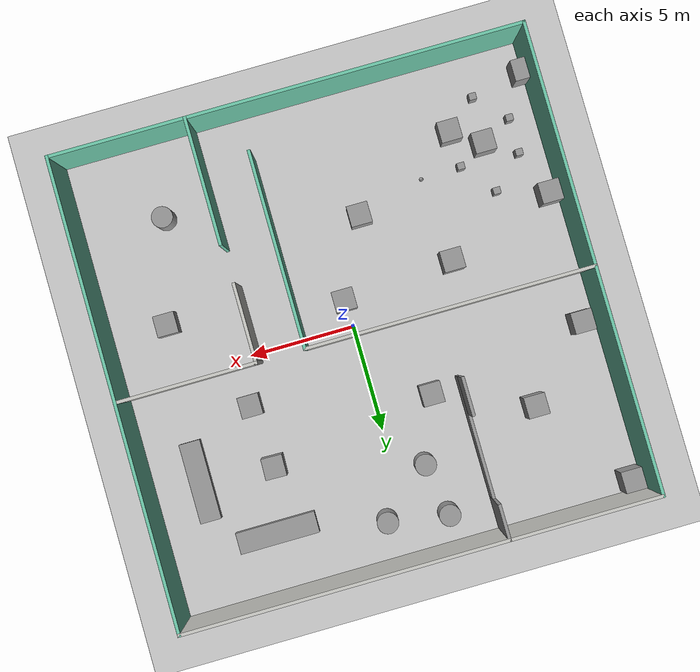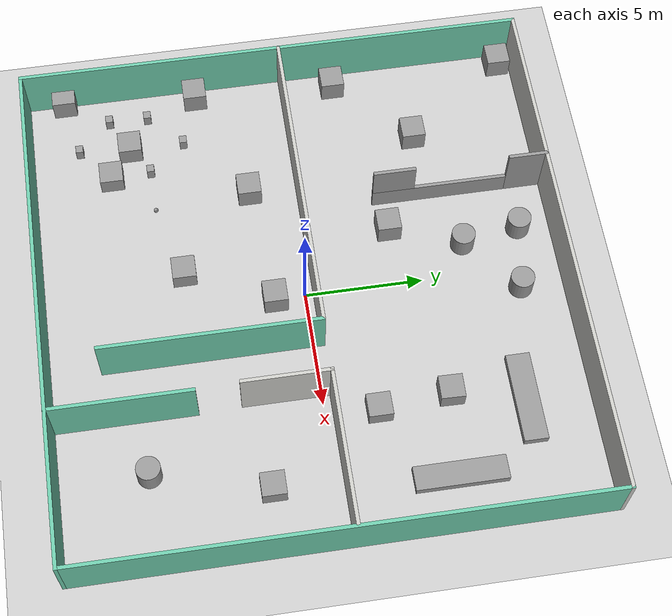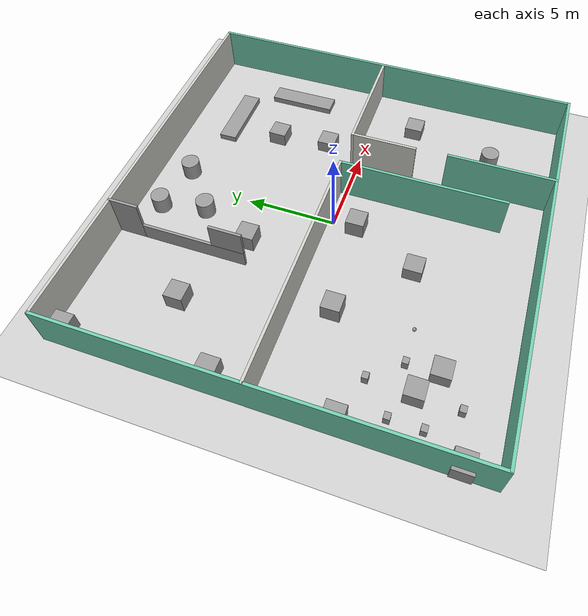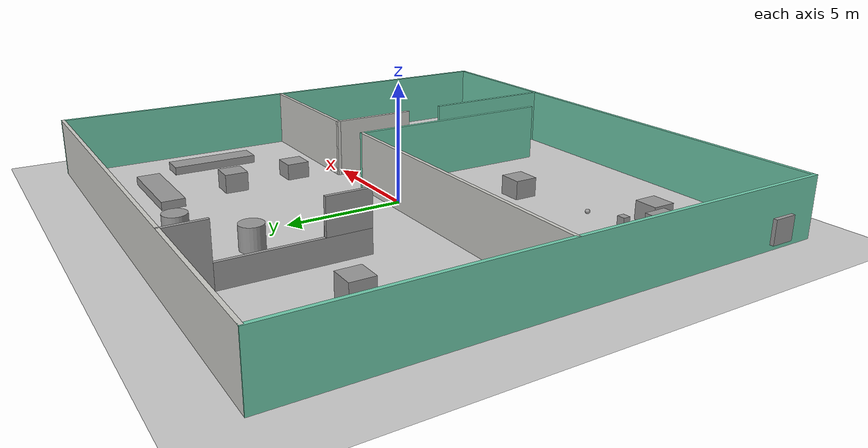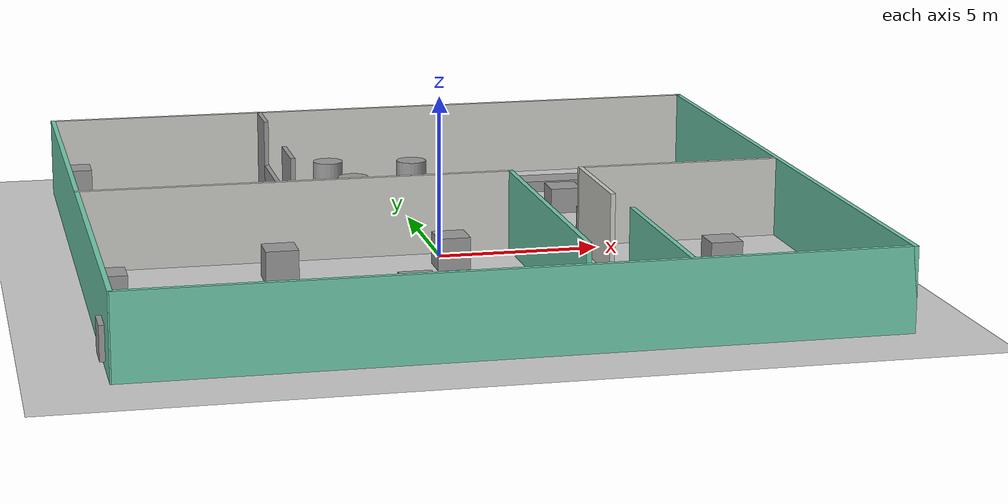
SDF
<sdf version="1.6">
 <world name="default">
  <light name="sun" type="directional">
   <pose>0 0 10 0 -0 0</pose>
   <diffuse>0.8 0.8 0.8 1</diffuse>
   <specular>0.2 0.2 0.2 1</specular>
   <attenuation>
    <range>1000</range>
    <constant>0.9</constant>
    <linear>0.01</linear>
    <quadratic>0.001</quadratic>
   </attenuation>
   <direction>-0.5 0.1 -0.9</direction>
  </light>
  <model name="ground_plane">
   <static>1</static>
   <link name="link">
    <collision name="collision">
     <geometry><plane><normal>0 0 1</normal><size>100 100</size></plane></geometry>
     <surface><friction><ode><mu>100</mu><mu2>50</mu2></ode></friction></surface>
    </collision>
    <visual name="visual">
     <cast_shadows>0</cast_shadows>
     <geometry><plane><normal>0 0 1</normal><size>100 100</size></plane></geometry>
     <material>
      <script><uri>file://media/materials/scripts/gazebo.material</uri><name>Gazebo/Grey</name></script>
     </material>
    </visual>
   </link>
  </model>
  <gravity>0 0 -9.8</gravity>
  <magnetic_field>6e-06 2.3e-05 -4.2e-05</magnetic_field>
  <atmosphere type="adiabatic"/>
  <physics name="default_physics" default="0" type="ode">
   <max_step_size>0.001</max_step_size>
   <real_time_factor>1</real_time_factor>
   <real_time_update_rate>1000</real_time_update_rate>
  </physics>
  <scene><ambient>0.4 0.4 0.4 1</ambient><background>0.7 0.7 0.7 1</background><shadows>1</shadows></scene>
  <spherical_coordinates>
   <surface_model>EARTH_WGS84</surface_model>
   <latitude_deg>0</latitude_deg>
   <longitude_deg>0</longitude_deg>
   <elevation>0</elevation>
   <heading_deg>0</heading_deg>
  </spherical_coordinates>
  <model name="my_ball">
   <link name="link_2">
    <inertial>
     <mass>1</mass>
     <inertia><ixx>0.1</ixx><ixy>0</ixy><ixz>0</ixz><iyy>0.1</iyy><iyz>0</iyz><izz>0.1</izz></inertia>
    </inertial>
    <visual name="visual">
     <geometry><sphere><radius>0.1</radius></sphere></geometry>
     <material>
      <lighting>1</lighting>
      <script><uri>file://media/materials/scripts/gazebo.material</uri><name>Gazebo/Grey</name></script>
      <shader type="pixel"><normal_map>__default__</normal_map></shader>
      <ambient>1 1 1 1</ambient>
      <diffuse>1 1 1 1</diffuse>
      <specular>1 1 1 1</specular>
      <emissive>1 1 1 1</emissive>
     </material>
    </visual>
    <collision name="collision">
     <geometry><sphere><radius>0.1</radius></sphere></geometry>
     <surface>
      <friction>
       <ode><mu>1</mu><mu2>1</mu2><fdir1>0 0 0</fdir1><slip1>0</slip1><slip2>0</slip2></ode>
       <torsional>
        <coefficient>1</coefficient>
        <patch_radius>0</patch_radius>
        <surface_radius>0</surface_radius>
        <use_patch_radius>1</use_patch_radius>
        <ode><slip>0</slip></ode>
       </torsional>
      </friction>
      <bounce><restitution_coefficient>0</restitution_coefficient><threshold>1e+06</threshold></bounce>
      <contact>
       <collide_without_contact>0</collide_without_contact>
       <collide_without_contact_bitmask>1</collide_without_contact_bitmask>
       <collide_bitmask>1</collide_bitmask>
       <ode>
        <soft_cfm>0</soft_cfm>
        <soft_erp>0.2</soft_erp>
        <kp>1e+13</kp>
        <kd>1</kd>
        <max_vel>0.01</max_vel>
        <min_depth>0</min_depth>
       </ode>
       <bullet>
        <split_impulse>1</split_impulse>
        <split_impulse_penetration_threshold>-0.01</split_impulse_penetration_threshold>
        <soft_cfm>0</soft_cfm>
        <soft_erp>0.2</soft_erp>
        <kp>1e+13</kp>
        <kd>1</kd>
       </bullet>
      </contact>
     </surface>
    </collision>
   </link>
   <static>0</static>
   <pose>-4.97501 -5.80262 0.1 0 -0 0</pose>
  </model>
  <model name="unit_box">
   <pose>5.27996 5.19919 0.287194 0 0 -0.023901</pose>
   <link name="link">
    <inertial>
     <mass>1</mass>
     <inertia>
      <ixx>0.166667</ixx>
      <ixy>0</ixy>
      <ixz>0</ixz>
      <iyy>0.166667</iyy>
      <iyz>0</iyz>
      <izz>0.166667</izz>
     </inertia>
    </inertial>
    <collision name="collision"><geometry><box><size>1 1 0.999996</size></box></geometry></collision>
    <visual name="visual">
     <geometry><box><size>1 1 0.999996</size></box></geometry>
     <material>
      <script><name>Gazebo/Grey</name><uri>file://media/materials/scripts/gazebo.material</uri></script>
     </material>
    </visual>
   </link>
  </model>
  <model name="unit_box_0">
   <pose>5.58133 2.20302 0.17775 -9e-06 -0 -0.00026</pose>
   <link name="link">
    <inertial>
     <mass>1</mass>
     <inertia>
      <ixx>0.166667</ixx>
      <ixy>0</ixy>
      <ixz>0</ixz>
      <iyy>0.166667</iyy>
      <iyz>0</iyz>
      <izz>0.166667</izz>
     </inertia>
    </inertial>
    <collision name="collision"><geometry><box><size>0.999999 1 1</size></box></geometry></collision>
    <visual name="visual">
     <geometry><box><size>0.999999 1 1</size></box></geometry>
     <material>
      <script><name>Gazebo/Grey</name><uri>file://media/materials/scripts/gazebo.material</uri></script>
     </material>
    </visual>
   </link>
  </model>
  <model name="unit_box_0_clone">
   <pose>5.97743 8.18866 0.176883 0 0.000462 -0.000192</pose>
   <link name="link">
    <inertial>
     <mass>1</mass>
     <inertia>
      <ixx>0.166667</ixx>
      <ixy>0</ixy>
      <ixz>0</ixz>
      <iyy>0.166667</iyy>
      <iyz>0</iyz>
      <izz>0.166667</izz>
     </inertia>
    </inertial>
    <collision name="collision"><geometry><box><size>3.77903 1 0.35551</size></box></geometry></collision>
    <visual name="visual">
     <geometry><box><size>3.77903 1 0.35551</size></box></geometry>
     <material>
      <script><name>Gazebo/Grey</name><uri>file://media/materials/scripts/gazebo.material</uri></script>
     </material>
    </visual>
   </link>
  </model>
  <model name="unit_box_0_clone_0">
   <pose>8.7896 4.94294 0.176883 0 0.000462 1.57059</pose>
   <link name="link">
    <inertial>
     <mass>1</mass>
     <inertia>
      <ixx>0.166667</ixx>
      <ixy>0</ixy>
      <ixz>0</ixz>
      <iyy>0.166667</iyy>
      <iyz>0</iyz>
      <izz>0.166667</izz>
     </inertia>
    </inertial>
    <collision name="collision"><geometry><box><size>3.77903 1 0.35551</size></box></geometry></collision>
    <visual name="visual">
     <geometry><box><size>3.77903 1 0.35551</size></box></geometry>
     <material>
      <script><name>Gazebo/Grey</name><uri>file://media/materials/scripts/gazebo.material</uri></script>
     </material>
    </visual>
   </link>
  </model>
  <model name="unit_box_1">
   <pose>-1.69144 -4.92382 0.284445 9e-06 0 1.57079</pose>
   <link name="link">
    <inertial>
     <mass>1</mass>
     <inertia>
      <ixx>0.166667</ixx>
      <ixy>0</ixy>
      <ixz>0</ixz>
      <iyy>0.166667</iyy>
      <iyz>0</iyz>
      <izz>0.166667</izz>
     </inertia>
    </inertial>
    <collision name="collision"><geometry><box><size>0.999999 1 1</size></box></geometry></collision>
    <visual name="visual">
     <geometry><box><size>0.999999 1 1</size></box></geometry>
     <material>
      <script><name>Gazebo/Grey</name><uri>file://media/materials/scripts/gazebo.material</uri></script>
     </material>
    </visual>
   </link>
  </model>
  <model name="unit_box_2">
   <pose>8.29614 -2.47648 0.235449 1.5708 -1.57005 -1.5708</pose>
   <link name="link">
    <inertial>
     <mass>1</mass>
     <inertia>
      <ixx>0.166667</ixx>
      <ixy>0</ixy>
      <ixz>0</ixz>
      <iyy>0.166667</iyy>
      <iyz>0</iyz>
      <izz>0.166667</izz>
     </inertia>
    </inertial>
    <collision name="collision"><geometry><box><size>0.999998 1 0.999999</size></box></geometry></collision>
    <visual name="visual">
     <geometry><box><size>0.999998 1 0.999999</size></box></geometry>
     <material>
      <script><name>Gazebo/Grey</name><uri>file://media/materials/scripts/gazebo.material</uri></script>
     </material>
    </visual>
   </link>
  </model>
  <model name="unit_box_3">
   <pose>-10.3737 10.2501 0.499995 0 1e-05 0</pose>
   <link name="link">
    <inertial>
     <mass>1</mass>
     <inertia>
      <ixx>0.166667</ixx>
      <ixy>0</ixy>
      <ixz>0</ixz>
      <iyy>0.166667</iyy>
      <iyz>0</iyz>
      <izz>0.166667</izz>
     </inertia>
    </inertial>
    <collision name="collision"><geometry><box><size>1 1 1</size></box></geometry></collision>
    <visual name="visual">
     <geometry><box><size>1 1 1</size></box></geometry>
     <material>
      <script><name>Gazebo/Grey</name><uri>file://media/materials/scripts/gazebo.material</uri></script>
     </material>
    </visual>
   </link>
  </model>
  <model name="unit_box_4">
   <pose>-7.06659 5.78189 0.499995 0 1e-05 0</pose>
   <link name="link">
    <inertial>
     <mass>1</mass>
     <inertia>
      <ixx>0.166667</ixx>
      <ixy>0</ixy>
      <ixz>0</ixz>
      <iyy>0.166667</iyy>
      <iyz>0</iyz>
      <izz>0.166667</izz>
     </inertia>
    </inertial>
    <collision name="collision"><geometry><box><size>1 1 1</size></box></geometry></collision>
    <visual name="visual">
     <geometry><box><size>1 1 1</size></box></geometry>
     <material>
      <script><name>Gazebo/Grey</name><uri>file://media/materials/scripts/gazebo.material</uri></script>
     </material>
    </visual>
   </link>
  </model>
  <model name="unit_box_5">
   <pose>-10.2068 2.66141 0.499995 0 1e-05 0</pose>
   <link name="link">
    <inertial>
     <mass>1</mass>
     <inertia>
      <ixx>0.166667</ixx>
      <ixy>0</ixy>
      <ixz>0</ixz>
      <iyy>0.166667</iyy>
      <iyz>0</iyz>
      <izz>0.166667</izz>
     </inertia>
    </inertial>
    <collision name="collision"><geometry><box><size>1 1 1</size></box></geometry></collision>
    <visual name="visual">
     <geometry><box><size>1 1 1</size></box></geometry>
     <material>
      <script><name>Gazebo/Grey</name><uri>file://media/materials/scripts/gazebo.material</uri></script>
     </material>
    </visual>
   </link>
  </model>
  <model name="unit_box_6">
   <pose>-10.7593 -9.26101 0.746315 -0 1e-06 -3.1e-05</pose>
   <link name="link">
    <inertial>
     <mass>1</mass>
     <inertia>
      <ixx>0.166667</ixx>
      <ixy>0</ixy>
      <ixz>0</ixz>
      <iyy>0.166667</iyy>
      <iyz>0</iyz>
      <izz>0.166667</izz>
     </inertia>
    </inertial>
    <collision name="collision"><geometry><box><size>1 0.999995 0.999999</size></box></geometry></collision>
    <visual name="visual">
     <geometry><box><size>1 0.999995 0.999999</size></box></geometry>
     <material>
      <script><name>Gazebo/Grey</name><uri>file://media/materials/scripts/gazebo.material</uri></script>
     </material>
    </visual>
   </link>
  </model>
  <model name="unit_box_7">
   <pose>0.069418 -1.28541 0.499995 -0 1e-05 1e-06</pose>
   <link name="link">
    <inertial>
     <mass>1</mass>
     <inertia>
      <ixx>0.166667</ixx>
      <ixy>0</ixy>
      <ixz>0</ixz>
      <iyy>0.166667</iyy>
      <iyz>0</iyz>
      <izz>0.166667</izz>
     </inertia>
    </inertial>
    <collision name="collision"><geometry><box><size>1 1 1</size></box></geometry></collision>
    <visual name="visual">
     <geometry><box><size>1 1 1</size></box></geometry>
     <material>
      <script><name>Gazebo/Grey</name><uri>file://media/materials/scripts/gazebo.material</uri></script>
     </material>
    </visual>
   </link>
  </model>
  <model name="unit_cylinder">
   <pose>-1.87417 9.48233 0.499993 -4e-06 -1e-06 0</pose>
   <link name="link">
    <inertial>
     <mass>1</mass>
     <inertia><ixx>0.145833</ixx><ixy>0</ixy><ixz>0</ixz><iyy>0.145833</iyy><iyz>0</iyz><izz>0.125</izz></inertia>
    </inertial>
    <collision name="collision">
     <geometry><cylinder><radius>0.5</radius><length>1</length></cylinder></geometry>
    </collision>
    <visual name="visual">
     <geometry><cylinder><radius>0.5</radius><length>1</length></cylinder></geometry>
     <material>
      <script><name>Gazebo/Grey</name><uri>file://media/materials/scripts/gazebo.material</uri></script>
     </material>
    </visual>
   </link>
  </model>
  <model name="unit_cylinder_0">
   <pose>-1.44459 6.98179 0.499993 -3e-06 -4e-06 -0</pose>
   <link name="link">
    <inertial>
     <mass>1</mass>
     <inertia><ixx>0.145833</ixx><ixy>0</ixy><ixz>0</ixz><iyy>0.145833</iyy><iyz>0</iyz><izz>0.125</izz></inertia>
    </inertial>
    <collision name="collision">
     <geometry><cylinder><radius>0.5</radius><length>1</length></cylinder></geometry>
    </collision>
    <visual name="visual">
     <geometry><cylinder><radius>0.5</radius><length>1</length></cylinder></geometry>
     <material>
      <script><name>Gazebo/Grey</name><uri>file://media/materials/scripts/gazebo.material</uri></script>
     </material>
    </visual>
   </link>
  </model>
  <model name="unit_cylinder_1">
   <pose>0.93951 9.03162 0.499993 -4e-06 -1e-06 0</pose>
   <link name="link">
    <inertial>
     <mass>1</mass>
     <inertia><ixx>0.145833</ixx><ixy>0</ixy><ixz>0</ixz><iyy>0.145833</iyy><iyz>0</iyz><izz>0.125</izz></inertia>
    </inertial>
    <collision name="collision">
     <geometry><cylinder><radius>0.5</radius><length>1</length></cylinder></geometry>
    </collision>
    <visual name="visual">
     <geometry><cylinder><radius>0.5</radius><length>1</length></cylinder></geometry>
     <material>
      <script><name>Gazebo/Grey</name><uri>file://media/materials/scripts/gazebo.material</uri></script>
     </material>
    </visual>
   </link>
  </model>
  <model name="unit_box_8">
   <pose>-6.7943 -7.53838 0.262147 0 -0 0</pose>
   <link name="link">
    <inertial>
     <mass>1</mass>
     <inertia>
      <ixx>0.166667</ixx>
      <ixy>0</ixy>
      <ixz>0</ixz>
      <iyy>0.166667</iyy>
      <iyz>0</iyz>
      <izz>0.166667</izz>
     </inertia>
    </inertial>
    <collision name="collision"><geometry><box><size>1 1 1</size></box></geometry></collision>
    <visual name="visual">
     <geometry><box><size>1 1 1</size></box></geometry>
     <material>
      <script><name>Gazebo/Grey</name><uri>file://media/materials/scripts/gazebo.material</uri></script>
     </material>
    </visual>
   </link>
  </model>
  <model name="unit_box_9">
   <pose>-10.4528 -3.50488 0.499995 -1e-05 0 0</pose>
   <link name="link">
    <inertial>
     <mass>1</mass>
     <inertia>
      <ixx>0.166667</ixx>
      <ixy>0</ixy>
      <ixz>0</ixz>
      <iyy>0.166667</iyy>
      <iyz>0</iyz>
      <izz>0.166667</izz>
     </inertia>
    </inertial>
    <collision name="collision"><geometry><box><size>1 1 1</size></box></geometry></collision>
    <visual name="visual">
     <geometry><box><size>1 1 1</size></box></geometry>
     <material>
      <script><name>Gazebo/Grey</name><uri>file://media/materials/scripts/gazebo.material</uri></script>
     </material>
    </visual>
   </link>
  </model>
  <model name="unit_box_10">
   <pose>-8.16632 -6.60489 0.360166 0 9e-06 0</pose>
   <link name="link">
    <inertial>
     <mass>1</mass>
     <inertia>
      <ixx>0.166667</ixx>
      <ixy>0</ixy>
      <ixz>0</ixz>
      <iyy>0.166667</iyy>
      <iyz>0</iyz>
      <izz>0.166667</izz>
     </inertia>
    </inertial>
    <collision name="collision"><geometry><box><size>1 0.999999 1</size></box></geometry></collision>
    <visual name="visual">
     <geometry><box><size>1 0.999999 1</size></box></geometry>
     <material>
      <script><name>Gazebo/Grey</name><uri>file://media/materials/scripts/gazebo.material</uri></script>
     </material>
    </visual>
   </link>
  </model>
  <model name="unit_box_11">
   <pose>-5.23155 -1.7076 0.499995 1e-05 -0 -5e-06</pose>
   <link name="link">
    <inertial>
     <mass>1</mass>
     <inertia>
      <ixx>0.166667</ixx>
      <ixy>0</ixy>
      <ixz>0</ixz>
      <iyy>0.166667</iyy>
      <iyz>0</iyz>
      <izz>0.166667</izz>
     </inertia>
    </inertial>
    <collision name="collision"><geometry><box><size>1 1 1</size></box></geometry></collision>
    <visual name="visual">
     <geometry><box><size>1 1 1</size></box></geometry>
     <material>
      <script><name>Gazebo/Grey</name><uri>file://media/materials/scripts/gazebo.material</uri></script>
     </material>
    </visual>
   </link>
  </model>
  <model name="unit_box_8_clone">
   <pose>-9.67088 -5.71166 0.262147 0 -0 0</pose>
   <link name="link">
    <inertial>
     <mass>1</mass>
     <inertia>
      <ixx>0.166667</ixx>
      <ixy>0</ixy>
      <ixz>0</ixz>
      <iyy>0.166667</iyy>
      <iyz>0</iyz>
      <izz>0.166667</izz>
     </inertia>
    </inertial>
    <collision name="collision">
     <geometry><box><size>0.346513 0.318947 0.524294</size></box></geometry>
    </collision>
    <visual name="visual">
     <geometry><box><size>0.346513 0.318947 0.524294</size></box></geometry>
     <material>
      <script><name>Gazebo/Grey</name><uri>file://media/materials/scripts/gazebo.material</uri></script>
     </material>
    </visual>
   </link>
  </model>
  <model name="unit_box_8_clone_0">
   <pose>-6.87918 -5.83103 0.262147 0 -0 0</pose>
   <link name="link">
    <inertial>
     <mass>1</mass>
     <inertia>
      <ixx>0.166667</ixx>
      <ixy>0</ixy>
      <ixz>0</ixz>
      <iyy>0.166667</iyy>
      <iyz>0</iyz>
      <izz>0.166667</izz>
     </inertia>
    </inertial>
    <collision name="collision">
     <geometry><box><size>0.346513 0.318947 0.524294</size></box></geometry>
    </collision>
    <visual name="visual">
     <geometry><box><size>0.346513 0.318947 0.524294</size></box></geometry>
     <material>
      <script><name>Gazebo/Grey</name><uri>file://media/materials/scripts/gazebo.material</uri></script>
     </material>
    </visual>
   </link>
  </model>
  <model name="unit_box_8_clone_1">
   <pose>-9.68698 -7.39606 0.262147 0 -0 0</pose>
   <link name="link">
    <inertial>
     <mass>1</mass>
     <inertia>
      <ixx>0.166667</ixx>
      <ixy>0</ixy>
      <ixz>0</ixz>
      <iyy>0.166667</iyy>
      <iyz>0</iyz>
      <izz>0.166667</izz>
     </inertia>
    </inertial>
    <collision name="collision">
     <geometry><box><size>0.346513 0.318947 0.524294</size></box></geometry>
    </collision>
    <visual name="visual">
     <geometry><box><size>0.346513 0.318947 0.524294</size></box></geometry>
     <material>
      <script><name>Gazebo/Grey</name><uri>file://media/materials/scripts/gazebo.material</uri></script>
     </material>
    </visual>
   </link>
  </model>
  <model name="unit_box_8_clone_2">
   <pose>-8.30613 -8.82299 0.262147 0 -0 0</pose>
   <link name="link">
    <inertial>
     <mass>1</mass>
     <inertia>
      <ixx>0.166667</ixx>
      <ixy>0</ixy>
      <ixz>0</ixz>
      <iyy>0.166667</iyy>
      <iyz>0</iyz>
      <izz>0.166667</izz>
     </inertia>
    </inertial>
    <collision name="collision">
     <geometry><box><size>0.346513 0.318947 0.524294</size></box></geometry>
    </collision>
    <visual name="visual">
     <geometry><box><size>0.346513 0.318947 0.524294</size></box></geometry>
     <material>
      <script><name>Gazebo/Grey</name><uri>file://media/materials/scripts/gazebo.material</uri></script>
     </material>
    </visual>
   </link>
  </model>
  <model name="unit_box_8_clone_3">
   <pose>-8.16799 -4.26601 0.262147 0 -0 0</pose>
   <link name="link">
    <inertial>
     <mass>1</mass>
     <inertia>
      <ixx>0.166667</ixx>
      <ixy>0</ixy>
      <ixz>0</ixz>
      <iyy>0.166667</iyy>
      <iyz>0</iyz>
      <izz>0.166667</izz>
     </inertia>
    </inertial>
    <collision name="collision">
     <geometry><box><size>0.346513 0.318947 0.524294</size></box></geometry>
    </collision>
    <visual name="visual">
     <geometry><box><size>0.346513 0.318947 0.524294</size></box></geometry>
     <material>
      <script><name>Gazebo/Grey</name><uri>file://media/materials/scripts/gazebo.material</uri></script>
     </material>
    </visual>
   </link>
  </model>
  <model name="unit_box_12">
   <pose>-2.60925 3.94947 0.499995 0 1e-05 0</pose>
   <link name="link">
    <inertial>
     <mass>1</mass>
     <inertia>
      <ixx>0.166667</ixx>
      <ixy>0</ixy>
      <ixz>0</ixz>
      <iyy>0.166667</iyy>
      <iyz>0</iyz>
      <izz>0.166667</izz>
     </inertia>
    </inertial>
    <collision name="collision"><geometry><box><size>1 1 1</size></box></geometry></collision>
    <visual name="visual">
     <geometry><box><size>1 1 1</size></box></geometry>
     <material>
      <script><name>Gazebo/Grey</name><uri>file://media/materials/scripts/gazebo.material</uri></script>
     </material>
    </visual>
   </link>
  </model>
  <model name="mybulding2">
   <link name="Wall_12">
    <collision name="Wall_12_Collision">
     <geometry><box><size>22.1614 0.15 2.5</size></box></geometry>
     <pose>0 0 1.25 0 -0 0</pose>
    </collision>
    <visual name="Wall_12_Visual">
     <pose>0 0 1.25 0 -0 0</pose>
     <geometry><box><size>22.1614 0.15 2.5</size></box></geometry>
     <material>
      <script><uri>file://media/materials/scripts/gazebo.material</uri><name>Gazebo/CeilingTiled</name></script>
      <ambient>1 1 1 1</ambient>
     </material>
     <meta><layer>0</layer></meta>
    </visual>
    <pose>0.022152 10.925 0 0 -0 3.14159</pose>
   </link>
   <link name="Wall_13">
    <collision name="Wall_13_Collision">
     <geometry><box><size>22 0.15 2.5</size></box></geometry>
     <pose>0 0 1.25 0 -0 0</pose>
    </collision>
    <visual name="Wall_13_Visual">
     <pose>0 0 1.25 0 -0 0</pose>
     <geometry><box><size>22 0.15 2.5</size></box></geometry>
     <material>
      <script><uri>file://media/materials/scripts/gazebo.material</uri><name>Gazebo/Grey</name></script>
      <ambient>0.435294 0.796078 0.67451 1</ambient>
     </material>
     <meta><layer>0</layer></meta>
    </visual>
    <pose>-11.0278 0 0 0 0 -1.5708</pose>
   </link>
   <link name="Wall_15">
    <collision name="Wall_15_Collision">
     <geometry><box><size>22.1614 0.15 2.5</size></box></geometry>
     <pose>0 0 1.25 0 -0 0</pose>
    </collision>
    <visual name="Wall_15_Visual">
     <pose>0 0 1.25 0 -0 0</pose>
     <geometry><box><size>22.1614 0.15 2.5</size></box></geometry>
     <material>
      <script><uri>file://media/materials/scripts/gazebo.material</uri><name>Gazebo/Grey</name></script>
      <ambient>0.435294 0.796078 0.67451 1</ambient>
     </material>
     <meta><layer>0</layer></meta>
    </visual>
    <pose>0.022152 -10.925 0 0 -0 0</pose>
   </link>
   <link name="Wall_16">
    <collision name="Wall_16_Collision">
     <geometry><box><size>22 0.15 2.5</size></box></geometry>
     <pose>0 0 1.25 0 -0 0</pose>
    </collision>
    <visual name="Wall_16_Visual">
     <pose>0 0 1.25 0 -0 0</pose>
     <geometry><box><size>22 0.15 2.5</size></box></geometry>
     <material>
      <script><uri>file://media/materials/scripts/gazebo.material</uri><name>Gazebo/Grey</name></script>
      <ambient>0.435294 0.796078 0.67451 1</ambient>
     </material>
     <meta><layer>0</layer></meta>
    </visual>
    <pose>11.0278 0 0 0 -0 1.5708</pose>
   </link>
   <link name="Wall_18">
    <collision name="Wall_18_Collision">
     <geometry><box><size>13.5 0.15 2.5</size></box></geometry>
     <pose>0 0 1.25 0 -0 0</pose>
    </collision>
    <visual name="Wall_18_Visual">
     <pose>0 0 1.25 0 -0 0</pose>
     <geometry><box><size>13.5 0.15 2.5</size></box></geometry>
     <material>
      <script><uri>file://media/materials/scripts/gazebo.material</uri><name>Gazebo/CeilingTiled</name></script>
      <ambient>1 1 1 1</ambient>
     </material>
     <meta><layer>0</layer></meta>
    </visual>
    <pose>-4.33745 0.401695 0 0 -0 0</pose>
   </link>
   <link name="Wall_19">
    <collision name="Wall_19_Collision">
     <geometry><box><size>9.25 0.15 2.5</size></box></geometry>
     <pose>0 0 1.25 0 -0 0</pose>
    </collision>
    <visual name="Wall_19_Visual">
     <pose>0 0 1.25 0 -0 0</pose>
     <geometry><box><size>9.25 0.15 2.5</size></box></geometry>
     <material>
      <script><uri>file://media/materials/scripts/gazebo.material</uri><name>Gazebo/Grey</name></script>
      <ambient>0.435294 0.796078 0.67451 1</ambient>
     </material>
     <meta><layer>0</layer></meta>
    </visual>
    <pose>2.33755 -4.1483 0 0 0 -1.5708</pose>
   </link>
   <link name="Wall_21">
    <collision name="Wall_21_Collision">
     <geometry><box><size>6.5 0.15 2.5</size></box></geometry>
     <pose>0 0 1.25 0 -0 0</pose>
    </collision>
    <visual name="Wall_21_Visual">
     <pose>0 0 1.25 0 -0 0</pose>
     <geometry><box><size>6.5 0.15 2.5</size></box></geometry>
     <material>
      <script><uri>file://media/materials/scripts/gazebo.material</uri><name>Gazebo/CeilingTiled</name></script>
      <ambient>1 1 1 1</ambient>
     </material>
     <meta><layer>0</layer></meta>
    </visual>
    <pose>7.75753 0.401695 0 0 -0 0</pose>
   </link>
   <link name="Wall_23">
    <collision name="Wall_23_Collision">
     <geometry><box><size>3.75 0.15 2.5</size></box></geometry>
     <pose>0 0 1.25 0 -0 0</pose>
    </collision>
    <visual name="Wall_23_Visual">
     <pose>0 0 1.25 0 -0 0</pose>
     <geometry><box><size>3.75 0.15 2.5</size></box></geometry>
     <material>
      <script><uri>file://media/materials/scripts/gazebo.material</uri><name>Gazebo/CeilingTiled</name></script>
      <ambient>1 1 1 1</ambient>
     </material>
     <meta><layer>0</layer></meta>
    </visual>
    <pose>4.58253 -1.3983 0 0 0 -1.5708</pose>
   </link>
   <link name="Wall_25">
    <collision name="Wall_25_Collision">
     <geometry><box><size>5.983 0.15 2.5</size></box></geometry>
     <pose>0 0 1.25 0 -0 0</pose>
    </collision>
    <visual name="Wall_25_Visual">
     <pose>0 0 1.25 0 -0 0</pose>
     <geometry><box><size>5.983 0.15 2.5</size></box></geometry>
     <material>
      <script><uri>file://media/materials/scripts/gazebo.material</uri><name>Gazebo/Grey</name></script>
      <ambient>0.435294 0.796078 0.67451 1</ambient>
     </material>
     <meta><layer>0</layer></meta>
    </visual>
    <pose>4.67085 -8.0085 0 0 0 -1.5708</pose>
   </link>
   <link name="Wall_27">
    <pose>-4.00417 7.24214 0 0 0 -1.5708</pose>
    <visual name="Wall_27_Visual_0">
     <pose>-2.90434 0 1.25 0 -0 0</pose>
     <geometry><box><size>1.69133 0.15 2.5</size></box></geometry>
     <material>
      <script><uri>file://media/materials/scripts/gazebo.material</uri><name>Gazebo/Grey</name></script>
      <ambient>1 1 1 1</ambient>
     </material>
     <meta><layer>0</layer></meta>
    </visual>
    <collision name="Wall_27_Collision_0">
     <geometry><box><size>1.69133 0.15 2.5</size></box></geometry>
     <pose>-2.90434 0 1.25 0 -0 0</pose>
    </collision>
    <visual name="Wall_27_Visual_1">
     <pose>0.845665 0 0.5 0 -0 0</pose>
     <geometry><box><size>5.80867 0.15 1</size></box></geometry>
     <material>
      <script><uri>file://media/materials/scripts/gazebo.material</uri><name>Gazebo/Grey</name></script>
      <ambient>1 1 1 1</ambient>
     </material>
     <meta><layer>0</layer></meta>
    </visual>
    <collision name="Wall_27_Collision_1">
     <geometry><box><size>5.80867 0.15 1</size></box></geometry>
     <pose>0.845665 0 0.5 0 -0 0</pose>
    </collision>
    <visual name="Wall_27_Visual_2">
     <pose>2.84566 0 1.75 0 -0 0</pose>
     <geometry><box><size>1.80867 0.15 1.5</size></box></geometry>
     <material>
      <script><uri>file://media/materials/scripts/gazebo.material</uri><name>Gazebo/Grey</name></script>
      <ambient>1 1 1 1</ambient>
     </material>
     <meta><layer>0</layer></meta>
    </visual>
    <collision name="Wall_27_Collision_2">
     <geometry><box><size>1.80867 0.15 1.5</size></box></geometry>
     <pose>2.84566 0 1.75 0 -0 0</pose>
    </collision>
   </link>
   <static>1</static>
  </model>
  <model name="unit_cylinder_0_clone">
   <pose>7.07208 -7.24869 0.499996 4e-06 1e-06 0</pose>
   <link name="link">
    <inertial>
     <mass>1</mass>
     <inertia><ixx>0.145833</ixx><ixy>0</ixy><ixz>0</ixz><iyy>0.145833</iyy><iyz>0</iyz><izz>0.125</izz></inertia>
    </inertial>
    <collision name="collision">
     <geometry><cylinder><radius>0.5</radius><length>1</length></cylinder></geometry>
    </collision>
    <visual name="visual">
     <geometry><cylinder><radius>0.5</radius><length>1</length></cylinder></geometry>
     <material>
      <script><name>Gazebo/Grey</name><uri>file://media/materials/scripts/gazebo.material</uri></script>
     </material>
    </visual>
   </link>
  </model>
 </world>
</sdf>
